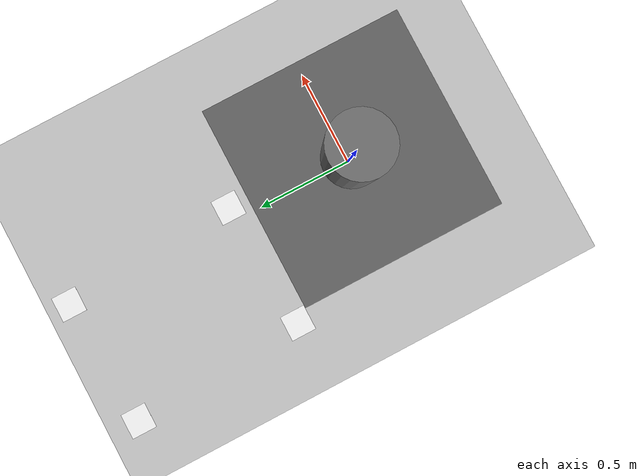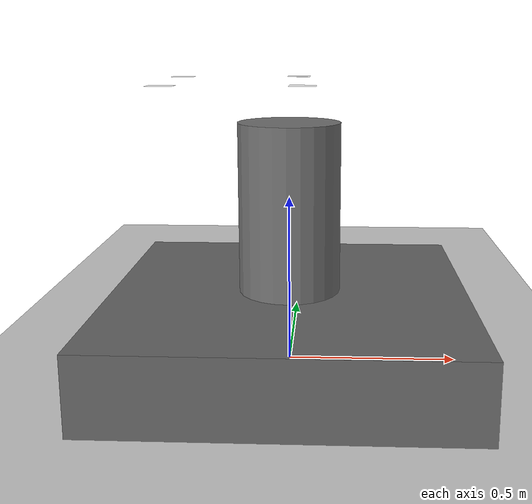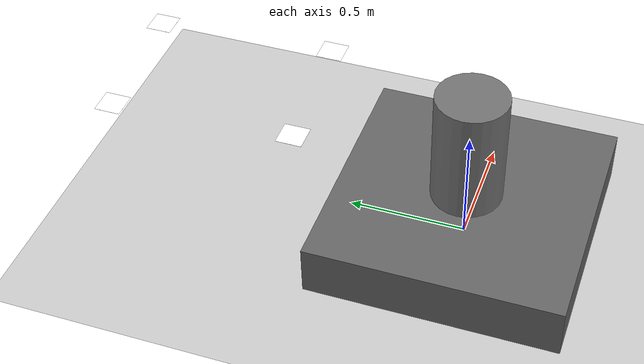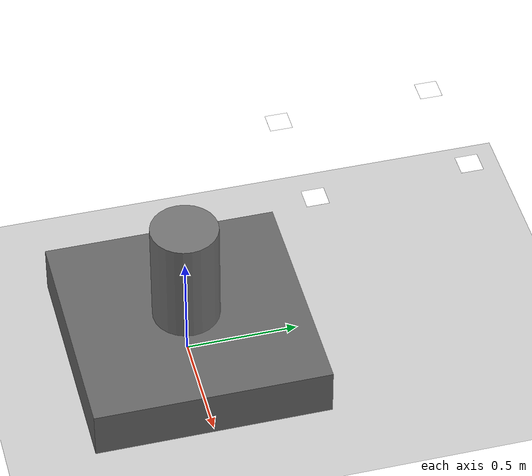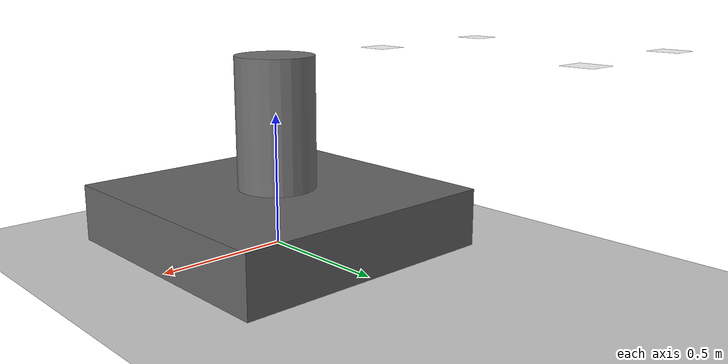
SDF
<?xml version="1.0" ?>
<sdf version="1.9">
  <world name="calibracion">

    <!-- ── Física ────────────────────────────────────────────── -->
    <physics name="1ms" type="ignored">
      <max_step_size>0.001</max_step_size>
      <real_time_factor>1.0</real_time_factor>
    </physics>

    <!-- ── Plugins del servidor ─────────────────────────────── -->
    <plugin filename="gz-sim-physics-system"        name="gz::sim::systems::Physics"/>
    <plugin filename="gz-sim-scene-broadcaster-system" name="gz::sim::systems::SceneBroadcaster"/>
    <plugin filename="gz-sim-user-commands-system"   name="gz::sim::systems::UserCommands"/>
    <plugin filename="gz-sim-sensors-system"          name="gz::sim::systems::Sensors">
      <render_engine>ogre2</render_engine>
    </plugin>
    <plugin filename="gz-sim-imu-system"              name="gz::sim::systems::Imu"/>

    <!-- ── Iluminación ─────────────────────────────────────── -->
    <light type="directional" name="sun">
      <cast_shadows>true</cast_shadows>
      <pose>0 0 10 0 0 0</pose>
      <diffuse>0.9 0.9 0.9 1</diffuse>
      <specular>0.3 0.3 0.3 1</specular>
      <direction>-0.5 0.1 -0.9</direction>
    </light>

    <!-- ── Suelo ───────────────────────────────────────────── -->
    <model name="ground_plane">
      <static>true</static>
      <link name="link">
        <collision name="collision">
          <geometry><plane><normal>0 0 1</normal></plane></geometry>
        </collision>
        <visual name="visual">
          <geometry><plane><normal>0 0 1</normal><size>50 50</size></plane></geometry>
          <material>
            <ambient>0.8 0.8 0.8 1</ambient>
            <diffuse>0.8 0.8 0.8 1</diffuse>
          </material>
        </visual>
      </link>
    </model>

    <!-- ── Pedestal / Base del robot ──────────────────────── -->
    <!-- Base cuadrada 1.05m x 1.05m x 0.22m en el suelo + columna central hasta z=0.72m -->
    <model name="robot_pedestal">
      <static>true</static>
      <pose>0 0 0 0 0 0</pose>

      <!-- Plataforma cuadrada en el suelo (22cm de alto) -->
      <link name="base_plate">
        <pose>0 0 0.11 0 0 0</pose>
        <collision name="collision">
          <geometry>
            <box><size>1.05 1.05 0.22</size></box>
          </geometry>
        </collision>
        <visual name="visual">
          <geometry>
            <box><size>1.05 1.05 0.22</size></box>
          </geometry>
          <material>
            <ambient>0.3 0.3 0.3 1</ambient>
            <diffuse>0.4 0.4 0.4 1</diffuse>
          </material>
        </visual>
      </link>

      <!-- Columna central desde la plataforma hasta la base del robot -->
      <!-- Altura columna: 0.72 - 0.22 = 0.50m, centro en z = 0.22 + 0.25 = 0.47 -->
      <link name="column">
        <pose>0 0 0.47 0 0 0</pose>
        <collision name="collision">
          <geometry>
            <cylinder>
              <radius>0.15</radius>
              <length>0.50</length>
            </cylinder>
          </geometry>
        </collision>
        <visual name="visual">
          <geometry>
            <cylinder>
              <radius>0.15</radius>
              <length>0.50</length>
            </cylinder>
          </geometry>
          <material>
            <ambient>0.35 0.35 0.35 1</ambient>
            <diffuse>0.45 0.45 0.45 1</diffuse>
          </material>
        </visual>
      </link>

      <joint name="base_to_column" type="fixed">
        <parent>base_plate</parent>
        <child>column</child>
      </joint>
    </model>

    <!-- ── Robot CR20 (URDF → spawn desde launch) ──────────── -->
    <!-- El robot se spawneará vía ros_gz_sim::create a z=0.72m -->

    <!-- ── AprilTag 10 ────────────────────────────────────── -->
    <include>
      <uri>model://apriltags/tag_10.sdf</uri>
      <name>apriltag_10</name>
    </include>

    <!-- ── AprilTag 11 ────────────────────────────────────── -->
    <include>
      <uri>model://apriltags/tag_11.sdf</uri>
      <name>apriltag_11</name>
    </include>

    <!-- ── AprilTag 12 ────────────────────────────────────── -->
    <include>
      <uri>model://apriltags/tag_12.sdf</uri>
      <name>apriltag_12</name>
    </include>

    <!-- ── AprilTag 13 ────────────────────────────────────── -->
    <include>
      <uri>model://apriltags/tag_13.sdf</uri>
      <name>apriltag_13</name>
    </include>

  </world>
</sdf>

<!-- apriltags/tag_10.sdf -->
<!-- AprilTag 36h11 ID 10 — Modelo para Gazebo Sim -->
<!-- Plano de 0.10m x 0.10m con textura del tag -->
<sdf version="1.9">
  <model name="apriltag_10">
    <!-- AprilTag 36h11 ID 10 — Posición calibrada: x=-0.490, y=0.542, z=0.284 m -->
    <pose>-0.490 0.542 0.79 0 0 0</pose>
    <static>true</static>
    <link name="tag_link">
      <visual name="tag_visual">
        <geometry>
          <plane>
            <normal>0 0 1</normal>
            <size>0.10 0.10</size>
          </plane>
        </geometry>
        <material>
          <diffuse>1 1 1 1</diffuse>
          <specular>0 0 0 1</specular>
          <pbr>
            <metal>
              <albedo_map>model://apriltags/textures/tag36_11_00010.png</albedo_map>
              <metalness>0.0</metalness>
              <roughness>1.0</roughness>
            </metal>
          </pbr>
        </material>
      </visual>
    </link>
  </model>
</sdf>

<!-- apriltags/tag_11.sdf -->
<!-- AprilTag 36h11 ID 11 — Modelo para Gazebo Sim -->
<sdf version="1.9">
  <model name="apriltag_11">
    <!-- AprilTag 36h11 ID 11 — Posición calibrada: x=-0.533, y=1.240, z=0.280 m -->
    <pose>-0.533 1.240 0.79 0 0 0</pose>
    <static>true</static>
    <link name="tag_link">
      <visual name="tag_visual">
        <geometry>
          <plane>
            <normal>0 0 1</normal>
            <size>0.10 0.10</size>
          </plane>
        </geometry>
        <material>
          <diffuse>1 1 1 1</diffuse>
          <specular>0 0 0 1</specular>
          <pbr>
            <metal>
              <albedo_map>model://apriltags/textures/tag36_11_00011.png</albedo_map>
              <metalness>0.0</metalness>
              <roughness>1.0</roughness>
            </metal>
          </pbr>
        </material>
      </visual>
    </link>
  </model>
</sdf>

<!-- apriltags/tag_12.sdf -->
<!-- AprilTag 36h11 ID 12 — Modelo para Gazebo Sim -->
<sdf version="1.9">
  <model name="apriltag_12">
    <!-- AprilTag 36h11 ID 12 — Posición calibrada: x=-0.024, y=1.273, z=0.279 m -->
    <pose>-0.024 1.273 0.79 0 0 0</pose>
    <static>true</static>
    <link name="tag_link">
      <visual name="tag_visual">
        <geometry>
          <plane>
            <normal>0 0 1</normal>
            <size>0.10 0.10</size>
          </plane>
        </geometry>
        <material>
          <diffuse>1 1 1 1</diffuse>
          <specular>0 0 0 1</specular>
          <pbr>
            <metal>
              <albedo_map>model://apriltags/textures/tag36_11_00012.png</albedo_map>
              <metalness>0.0</metalness>
              <roughness>1.0</roughness>
            </metal>
          </pbr>
        </material>
      </visual>
    </link>
  </model>
</sdf>

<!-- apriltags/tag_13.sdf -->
<!-- AprilTag 36h11 ID 13 — Modelo para Gazebo Sim -->
<sdf version="1.9">
  <model name="apriltag_13">
    <!-- AprilTag 36h11 ID 13 — Posición calibrada: x=0.018, y=0.572, z=0.282 m -->
    <pose>0.018 0.572 0.79 0 0 0</pose>
    <static>true</static>
    <link name="tag_link">
      <visual name="tag_visual">
        <geometry>
          <plane>
            <normal>0 0 1</normal>
            <size>0.10 0.10</size>
          </plane>
        </geometry>
        <material>
          <diffuse>1 1 1 1</diffuse>
          <specular>0 0 0 1</specular>
          <pbr>
            <metal>
              <albedo_map>model://apriltags/textures/tag36_11_00013.png</albedo_map>
              <metalness>0.0</metalness>
              <roughness>1.0</roughness>
            </metal>
          </pbr>
        </material>
      </visual>
    </link>
  </model>
</sdf>
